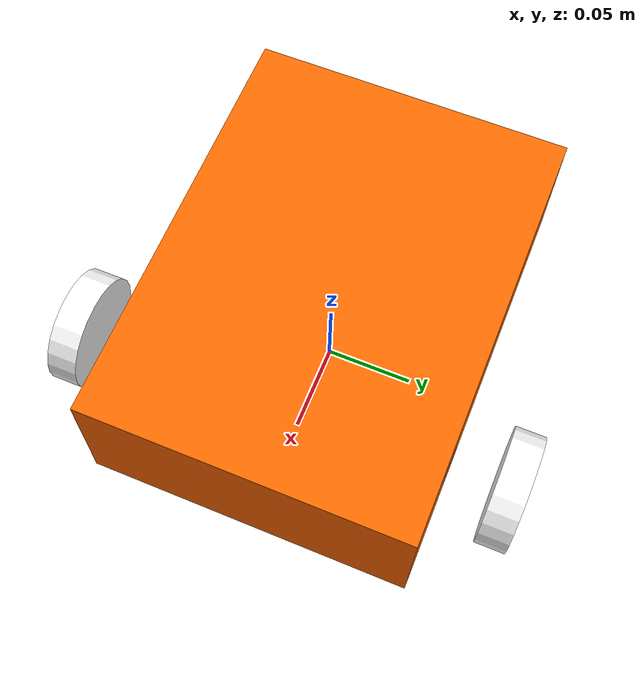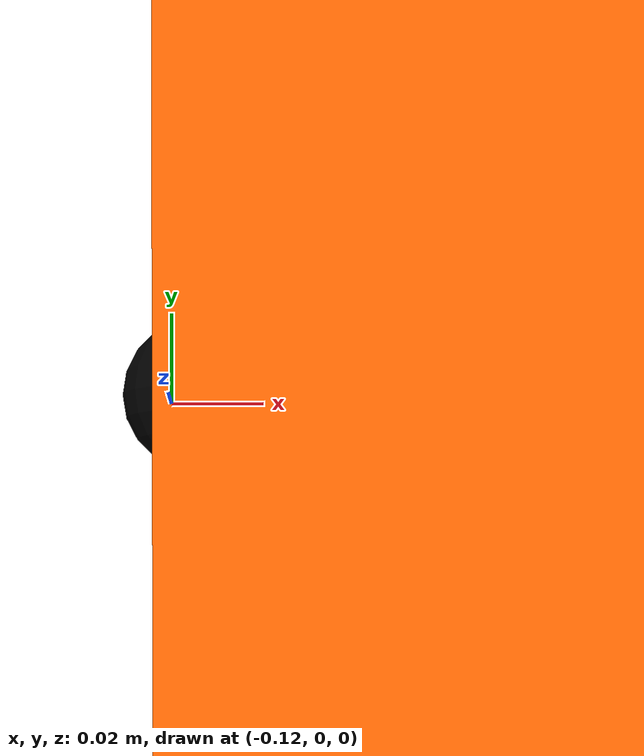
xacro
<?xml version="1.0" ?>
<robot name="robot">

    <link name="base_link">
        <visual>
            <origin xyz=" 0 0 0.06" rpy="0 0 0" />
            <geometry>
                <box size="0.24 0.18 0.08"/>
            </geometry>
            <material name="yellow">
                <color rgba="1 0.4 0 1"/>
            </material>
        </visual>
    </link>

    <joint name="base_left_motor_joint" type="fixed">
        <origin xyz="0.055 0.075 0.04" rpy="0 0 0" />
        <parent link="base_link"/>
        <child link="left_motor" />
    </joint>

    <link name="left_motor">
        <visual>
            <origin xyz="0 0 0" rpy="1.5707 0 0" />
            <geometry>
                <cylinder radius="0.0125" length = "0.030"/>
            </geometry>
            <material name="gray">
                <color rgba="0.75 0.75 0.75 1"/>
            </material>
        </visual>
    </link>

    <joint name="left_wheel_joint" type="continuous">
        <origin xyz="0 0.0485 0" rpy="0 0 0"/>
        <parent link="left_motor"/>
        <child link="left_wheel_link"/>
        <axis xyz="0 1 0"/>
    </joint>

    <link name="left_wheel_link">
        <visual>
            <origin xyz="0 0 0" rpy="1.5707 0 0" />
            <geometry>
                <cylinder radius="0.0325" length = "0.017"/>
            </geometry>
            <material name="white">
                <color rgba="1 1 1 0.9"/>
            </material>
        </visual>
    </link>

    <joint name="base_right_motor_joint" type="fixed">
        <origin xyz="0.055 -0.075 0.04" rpy="0 0 0" />
        <parent link="base_link"/>
        <child link="right_motor"/>
    </joint>

    <link name="right_motor">
        <visual>
            <origin xyz="0 0 0" rpy="1.5707 0 0" />
            <geometry>
                <cylinder radius="0.0125" length = "0.030"/>
            </geometry>
            <material name="gray">
                <color rgba="0.75 0.75 0.75 1"/>
            </material>
        </visual>
    </link>

    <joint name="right_wheel_joint" type="continuous">
        <origin xyz="0 -0.0485 0" rpy="0 0 0"/>
        <parent link="right_motor"/>
        <child link="right_wheel_link"/>
        <axis xyz="0 1 0"/>
    </joint>

    <link name="right_wheel_link">
        <visual>
            <origin xyz="0 0 0" rpy="1.5707 0 0"/>
            <geometry>
                <cylinder radius="0.0325" length = "0.017"/>
            </geometry>
            <material name="white">
                <color rgba="1 1 1 0.9"/>
            </material>
        </visual>
    </link>

    <joint name="front_castor_joint" type="fixed">
        <origin xyz="-0.1135 0 0.0165" rpy="0 0 0"/>
        <parent link="base_link"/>
        <child link="front_castor_link"/>
        <axis xyz="0 1 0"/>
    </joint>

    <link name="front_castor_link">
        <visual>
            <origin xyz="0 0 0" rpy="1.5707 0 0"/>
            <geometry>
                <sphere radius="0.0165"/>
            </geometry>
            <material name="black">
                <color rgba="0 0 0 0.95"/>
            </material>
        </visual>
    </link>

</robot>
